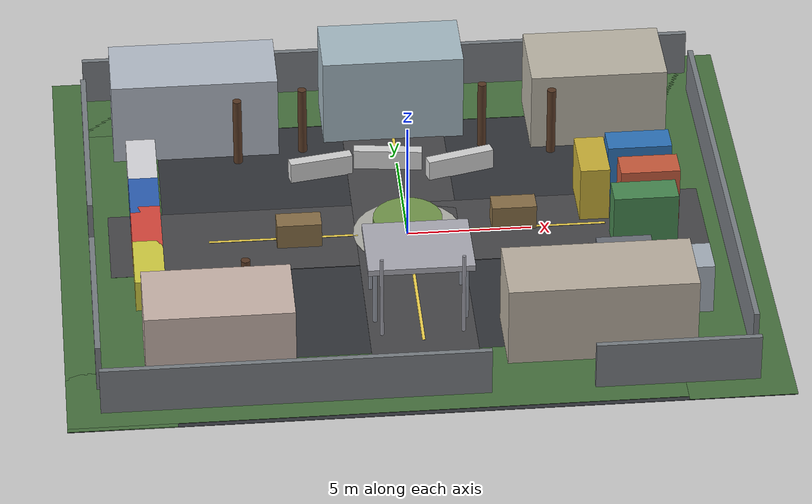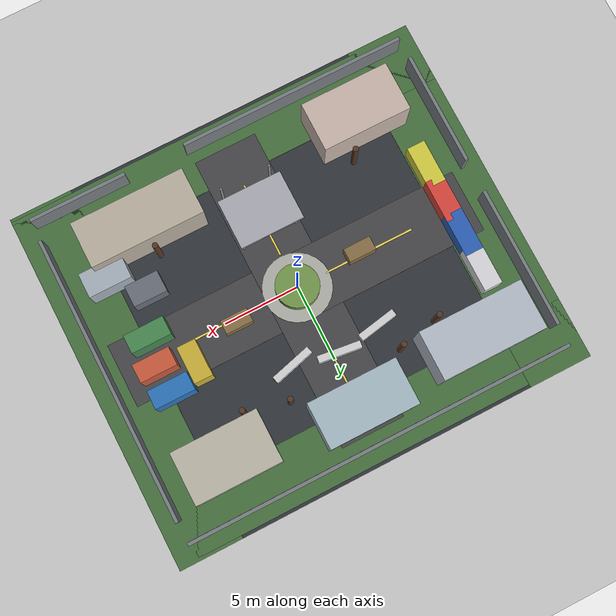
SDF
<?xml version="1.0" ?>
<sdf version="1.7">
  <world name="outdoor_research_park">
    <gravity>0 0 -9.8</gravity>
    <include>
      <uri>model://ground_plane</uri>
    </include>
    <include>
      <uri>model://sun</uri>
    </include>

    <scene>
      <ambient>0.72 0.72 0.72 1</ambient>
      <background>0.76 0.86 0.98 1</background>
      <shadows>true</shadows>
    </scene>

    <model name="site_surface">
      <static>true</static>
      <link name="surface">
        <visual name="asphalt_pad">
          <pose>0 0 0.01 0 0 0</pose>
          <geometry>
            <box><size>28 24 0.02</size></box>
          </geometry>
          <material>
            <ambient>0.18 0.19 0.21 1</ambient>
            <diffuse>0.20 0.21 0.23 1</diffuse>
          </material>
        </visual>
        <visual name="north_greenbelt">
          <pose>0 9.9 0.02 0 0 0</pose>
          <geometry>
            <box><size>28 3.8 0.04</size></box>
          </geometry>
          <material>
            <ambient>0.25 0.40 0.22 1</ambient>
            <diffuse>0.28 0.45 0.25 1</diffuse>
          </material>
        </visual>
        <visual name="south_greenbelt">
          <pose>0 -9.9 0.02 0 0 0</pose>
          <geometry>
            <box><size>28 3.8 0.04</size></box>
          </geometry>
          <material>
            <ambient>0.25 0.40 0.22 1</ambient>
            <diffuse>0.28 0.45 0.25 1</diffuse>
          </material>
        </visual>
        <visual name="west_greenbelt">
          <pose>-11.9 0 0.02 0 0 0</pose>
          <geometry>
            <box><size>4.2 24 0.04</size></box>
          </geometry>
          <material>
            <ambient>0.25 0.40 0.22 1</ambient>
            <diffuse>0.28 0.45 0.25 1</diffuse>
          </material>
        </visual>
        <visual name="east_greenbelt">
          <pose>11.9 0 0.02 0 0 0</pose>
          <geometry>
            <box><size>4.2 24 0.04</size></box>
          </geometry>
          <material>
            <ambient>0.25 0.40 0.22 1</ambient>
            <diffuse>0.28 0.45 0.25 1</diffuse>
          </material>
        </visual>
        <visual name="main_avenue">
          <pose>0 0 0.03 0 0 0</pose>
          <geometry>
            <box><size>24 4.2 0.03</size></box>
          </geometry>
          <material>
            <ambient>0.24 0.24 0.25 1</ambient>
            <diffuse>0.28 0.28 0.29 1</diffuse>
          </material>
        </visual>
        <visual name="cross_avenue">
          <pose>0 0 0.03 0 0 0</pose>
          <geometry>
            <box><size>4.2 20 0.03</size></box>
          </geometry>
          <material>
            <ambient>0.24 0.24 0.25 1</ambient>
            <diffuse>0.28 0.28 0.29 1</diffuse>
          </material>
        </visual>
        <visual name="plaza">
          <pose>0 0 0.04 0 0 0</pose>
          <geometry>
            <cylinder><radius>2.2</radius><length>0.03</length></cylinder>
          </geometry>
          <material>
            <ambient>0.63 0.63 0.60 1</ambient>
            <diffuse>0.70 0.70 0.67 1</diffuse>
          </material>
        </visual>
        <visual name="lane_marking_east">
          <pose>5.0 0 0.05 0 0 0</pose>
          <geometry>
            <box><size>6.0 0.12 0.01</size></box>
          </geometry>
          <material>
            <ambient>0.94 0.82 0.28 1</ambient>
            <diffuse>0.96 0.84 0.30 1</diffuse>
          </material>
        </visual>
        <visual name="lane_marking_west">
          <pose>-5.0 0 0.05 0 0 0</pose>
          <geometry>
            <box><size>6.0 0.12 0.01</size></box>
          </geometry>
          <material>
            <ambient>0.94 0.82 0.28 1</ambient>
            <diffuse>0.96 0.84 0.30 1</diffuse>
          </material>
        </visual>
        <visual name="lane_marking_north">
          <pose>0 4.8 0.05 0 0 1.5708</pose>
          <geometry>
            <box><size>5.0 0.12 0.01</size></box>
          </geometry>
          <material>
            <ambient>0.94 0.82 0.28 1</ambient>
            <diffuse>0.96 0.84 0.30 1</diffuse>
          </material>
        </visual>
        <visual name="lane_marking_south">
          <pose>0 -4.8 0.05 0 0 1.5708</pose>
          <geometry>
            <box><size>5.0 0.12 0.01</size></box>
          </geometry>
          <material>
            <ambient>0.94 0.82 0.28 1</ambient>
            <diffuse>0.96 0.84 0.30 1</diffuse>
          </material>
        </visual>
      </link>
    </model>

    <model name="campus_structures">
      <static>true</static>
      <link name="structures">
        <collision name="north_lab_west">
          <pose>-8.2 7.7 1.8 0 0 0</pose>
          <geometry><box><size>6.8 3.2 3.6</size></box></geometry>
        </collision>
        <collision name="north_lab_center">
          <pose>0.0 8.3 1.9 0 0 0</pose>
          <geometry><box><size>5.8 3.0 3.8</size></box></geometry>
        </collision>
        <collision name="north_lab_east">
          <pose>8.4 7.4 1.7 0 0 0</pose>
          <geometry><box><size>5.6 3.4 3.4</size></box></geometry>
        </collision>
        <collision name="south_office_west">
          <pose>-8.0 -7.8 1.6 0 0 0</pose>
          <geometry><box><size>5.8 3.2 3.2</size></box></geometry>
        </collision>
        <collision name="south_office_east">
          <pose>6.8 -7.6 1.7 0 0 0</pose>
          <geometry><box><size>7.4 3.0 3.4</size></box></geometry>
        </collision>
        <collision name="west_gate_fence_north">
          <pose>-12.7 4.8 1.0 0 0 0</pose>
          <geometry><box><size>0.22 9.2 2.0</size></box></geometry>
        </collision>
        <collision name="west_gate_fence_south">
          <pose>-12.7 -5.7 1.0 0 0 0</pose>
          <geometry><box><size>0.22 7.4 2.0</size></box></geometry>
        </collision>
        <collision name="east_fence">
          <pose>12.7 0.0 1.0 0 0 0</pose>
          <geometry><box><size>0.22 18.8 2.0</size></box></geometry>
        </collision>
        <collision name="north_fence">
          <pose>0.0 10.8 1.0 0 0 0</pose>
          <geometry><box><size>25.4 0.22 2.0</size></box></geometry>
        </collision>
        <collision name="south_fence_west">
          <pose>-5.2 -10.8 1.0 0 0 0</pose>
          <geometry><box><size>15.0 0.22 2.0</size></box></geometry>
        </collision>
        <collision name="south_fence_east">
          <pose>9.5 -10.8 1.0 0 0 0</pose>
          <geometry><box><size>6.4 0.22 2.0</size></box></geometry>
        </collision>
        <collision name="center_island">
          <pose>0.0 0.0 0.4 0 0 0</pose>
          <geometry><cylinder><radius>1.4</radius><length>0.8</length></cylinder></geometry>
        </collision>
        <collision name="inspection_canopy_roof">
          <pose>0.0 -4.8 2.7 0 0 0</pose>
          <geometry><box><size>4.2 3.2 0.25</size></box></geometry>
        </collision>
        <collision name="inspection_canopy_post_1">
          <pose>-1.8 -5.9 1.3 0 0 0</pose>
          <geometry><cylinder><radius>0.08</radius><length>2.6</length></cylinder></geometry>
        </collision>
        <collision name="inspection_canopy_post_2">
          <pose>1.8 -5.9 1.3 0 0 0</pose>
          <geometry><cylinder><radius>0.08</radius><length>2.6</length></cylinder></geometry>
        </collision>
        <collision name="inspection_canopy_post_3">
          <pose>-1.8 -3.7 1.3 0 0 0</pose>
          <geometry><cylinder><radius>0.08</radius><length>2.6</length></cylinder></geometry>
        </collision>
        <collision name="inspection_canopy_post_4">
          <pose>1.8 -3.7 1.3 0 0 0</pose>
          <geometry><cylinder><radius>0.08</radius><length>2.6</length></cylinder></geometry>
        </collision>
        <collision name="container_a">
          <pose>9.6 2.4 1.2 0 0 0</pose>
          <geometry><box><size>2.6 1.2 2.4</size></box></geometry>
        </collision>
        <collision name="container_b">
          <pose>9.8 0.6 1.2 0 0 0</pose>
          <geometry><box><size>2.4 1.2 2.4</size></box></geometry>
        </collision>
        <collision name="container_c">
          <pose>9.4 -1.2 1.2 0 0 0</pose>
          <geometry><box><size>2.6 1.2 2.4</size></box></geometry>
        </collision>
        <collision name="container_d">
          <pose>7.6 1.5 1.2 0 0 1.5708</pose>
          <geometry><box><size>2.4 1.2 2.4</size></box></geometry>
        </collision>
        <collision name="generator_skid">
          <pose>8.3 -3.9 0.8 0 0 0</pose>
          <geometry><box><size>2.2 1.4 1.6</size></box></geometry>
        </collision>
        <collision name="utility_shed">
          <pose>10.1 -5.6 1.1 0 0 0</pose>
          <geometry><box><size>2.8 1.6 2.2</size></box></geometry>
        </collision>
        <collision name="car_a">
          <pose>-10.5 4.2 0.7 0 0 1.5708</pose>
          <geometry><box><size>2.8 1.2 1.4</size></box></geometry>
        </collision>
        <collision name="car_b">
          <pose>-10.5 1.8 0.7 0 0 1.5708</pose>
          <geometry><box><size>2.8 1.2 1.4</size></box></geometry>
        </collision>
        <collision name="car_c">
          <pose>-10.5 -0.6 0.7 0 0 1.5708</pose>
          <geometry><box><size>2.8 1.2 1.4</size></box></geometry>
        </collision>
        <collision name="car_d">
          <pose>-10.5 -3.0 0.7 0 0 1.5708</pose>
          <geometry><box><size>2.8 1.2 1.4</size></box></geometry>
        </collision>
        <collision name="jersey_barrier_a">
          <pose>-3.2 4.4 0.45 0 0 0.18</pose>
          <geometry><box><size>2.6 0.45 0.9</size></box></geometry>
        </collision>
        <collision name="jersey_barrier_b">
          <pose>-0.4 4.8 0.45 0 0 -0.12</pose>
          <geometry><box><size>2.8 0.45 0.9</size></box></geometry>
        </collision>
        <collision name="jersey_barrier_c">
          <pose>2.5 4.2 0.45 0 0 0.26</pose>
          <geometry><box><size>2.8 0.45 0.9</size></box></geometry>
        </collision>
        <collision name="planter_a">
          <pose>-4.4 -0.2 0.55 0 0 0</pose>
          <geometry><box><size>1.8 0.9 1.1</size></box></geometry>
        </collision>
        <collision name="planter_b">
          <pose>4.3 0.3 0.55 0 0 0</pose>
          <geometry><box><size>1.8 0.9 1.1</size></box></geometry>
        </collision>
        <collision name="tree_1">
          <pose>-6.5 5.7 1.5 0 0 0</pose>
          <geometry><cylinder><radius>0.18</radius><length>3.0</length></cylinder></geometry>
        </collision>
        <collision name="tree_2">
          <pose>-3.8 6.3 1.5 0 0 0</pose>
          <geometry><cylinder><radius>0.18</radius><length>3.0</length></cylinder></geometry>
        </collision>
        <collision name="tree_3">
          <pose>3.6 6.1 1.5 0 0 0</pose>
          <geometry><cylinder><radius>0.18</radius><length>3.0</length></cylinder></geometry>
        </collision>
        <collision name="tree_4">
          <pose>6.4 5.4 1.5 0 0 0</pose>
          <geometry><cylinder><radius>0.18</radius><length>3.0</length></cylinder></geometry>
        </collision>
        <collision name="tree_5">
          <pose>-6.8 -5.5 1.5 0 0 0</pose>
          <geometry><cylinder><radius>0.18</radius><length>3.0</length></cylinder></geometry>
        </collision>
        <collision name="tree_6">
          <pose>6.6 -5.7 1.5 0 0 0</pose>
          <geometry><cylinder><radius>0.18</radius><length>3.0</length></cylinder></geometry>
        </collision>
        <collision name="lamp_post_a">
          <pose>-1.5 7.0 1.8 0 0 0</pose>
          <geometry><cylinder><radius>0.07</radius><length>3.6</length></cylinder></geometry>
        </collision>
        <collision name="lamp_post_b">
          <pose>1.5 7.0 1.8 0 0 0</pose>
          <geometry><cylinder><radius>0.07</radius><length>3.6</length></cylinder></geometry>
        </collision>
        <collision name="lamp_post_c">
          <pose>-1.6 -6.8 1.8 0 0 0</pose>
          <geometry><cylinder><radius>0.07</radius><length>3.6</length></cylinder></geometry>
        </collision>
        <collision name="lamp_post_d">
          <pose>1.6 -6.8 1.8 0 0 0</pose>
          <geometry><cylinder><radius>0.07</radius><length>3.6</length></cylinder></geometry>
        </collision>

        <visual name="north_lab_west_visual">
          <pose>-8.2 7.7 1.8 0 0 0</pose>
          <geometry><box><size>6.8 3.2 3.6</size></box></geometry>
          <material><ambient>0.66 0.69 0.74 1</ambient><diffuse>0.72 0.75 0.80 1</diffuse></material>
        </visual>
        <visual name="north_lab_center_visual">
          <pose>0.0 8.3 1.9 0 0 0</pose>
          <geometry><box><size>5.8 3.0 3.8</size></box></geometry>
          <material><ambient>0.60 0.68 0.72 1</ambient><diffuse>0.66 0.74 0.78 1</diffuse></material>
        </visual>
        <visual name="north_lab_east_visual">
          <pose>8.4 7.4 1.7 0 0 0</pose>
          <geometry><box><size>5.6 3.4 3.4</size></box></geometry>
          <material><ambient>0.68 0.66 0.60 1</ambient><diffuse>0.74 0.72 0.66 1</diffuse></material>
        </visual>
        <visual name="south_office_west_visual">
          <pose>-8.0 -7.8 1.6 0 0 0</pose>
          <geometry><box><size>5.8 3.2 3.2</size></box></geometry>
          <material><ambient>0.73 0.66 0.62 1</ambient><diffuse>0.80 0.72 0.68 1</diffuse></material>
        </visual>
        <visual name="south_office_east_visual">
          <pose>6.8 -7.6 1.7 0 0 0</pose>
          <geometry><box><size>7.4 3.0 3.4</size></box></geometry>
          <material><ambient>0.67 0.64 0.58 1</ambient><diffuse>0.74 0.70 0.64 1</diffuse></material>
        </visual>
        <visual name="west_gate_fence_north_visual">
          <pose>-12.7 4.8 1.0 0 0 0</pose>
          <geometry><box><size>0.22 9.2 2.0</size></box></geometry>
          <material><ambient>0.48 0.50 0.52 1</ambient></material>
        </visual>
        <visual name="west_gate_fence_south_visual">
          <pose>-12.7 -5.7 1.0 0 0 0</pose>
          <geometry><box><size>0.22 7.4 2.0</size></box></geometry>
          <material><ambient>0.48 0.50 0.52 1</ambient></material>
        </visual>
        <visual name="east_fence_visual">
          <pose>12.7 0.0 1.0 0 0 0</pose>
          <geometry><box><size>0.22 18.8 2.0</size></box></geometry>
          <material><ambient>0.48 0.50 0.52 1</ambient></material>
        </visual>
        <visual name="north_fence_visual">
          <pose>0.0 10.8 1.0 0 0 0</pose>
          <geometry><box><size>25.4 0.22 2.0</size></box></geometry>
          <material><ambient>0.48 0.50 0.52 1</ambient></material>
        </visual>
        <visual name="south_fence_west_visual">
          <pose>-5.2 -10.8 1.0 0 0 0</pose>
          <geometry><box><size>15.0 0.22 2.0</size></box></geometry>
          <material><ambient>0.48 0.50 0.52 1</ambient></material>
        </visual>
        <visual name="south_fence_east_visual">
          <pose>9.5 -10.8 1.0 0 0 0</pose>
          <geometry><box><size>6.4 0.22 2.0</size></box></geometry>
          <material><ambient>0.48 0.50 0.52 1</ambient></material>
        </visual>
        <visual name="center_island_visual">
          <pose>0.0 0.0 0.4 0 0 0</pose>
          <geometry><cylinder><radius>1.4</radius><length>0.8</length></cylinder></geometry>
          <material><ambient>0.42 0.54 0.26 1</ambient><diffuse>0.46 0.60 0.30 1</diffuse></material>
        </visual>
        <visual name="inspection_canopy_roof_visual">
          <pose>0.0 -4.8 2.7 0 0 0</pose>
          <geometry><box><size>4.2 3.2 0.25</size></box></geometry>
          <material><ambient>0.68 0.68 0.72 1</ambient></material>
        </visual>
        <visual name="inspection_canopy_post_1_visual">
          <pose>-1.8 -5.9 1.3 0 0 0</pose>
          <geometry><cylinder><radius>0.08</radius><length>2.6</length></cylinder></geometry>
          <material><ambient>0.56 0.58 0.62 1</ambient></material>
        </visual>
        <visual name="inspection_canopy_post_2_visual">
          <pose>1.8 -5.9 1.3 0 0 0</pose>
          <geometry><cylinder><radius>0.08</radius><length>2.6</length></cylinder></geometry>
          <material><ambient>0.56 0.58 0.62 1</ambient></material>
        </visual>
        <visual name="inspection_canopy_post_3_visual">
          <pose>-1.8 -3.7 1.3 0 0 0</pose>
          <geometry><cylinder><radius>0.08</radius><length>2.6</length></cylinder></geometry>
          <material><ambient>0.56 0.58 0.62 1</ambient></material>
        </visual>
        <visual name="inspection_canopy_post_4_visual">
          <pose>1.8 -3.7 1.3 0 0 0</pose>
          <geometry><cylinder><radius>0.08</radius><length>2.6</length></cylinder></geometry>
          <material><ambient>0.56 0.58 0.62 1</ambient></material>
        </visual>
        <visual name="container_a_visual">
          <pose>9.6 2.4 1.2 0 0 0</pose>
          <geometry><box><size>2.6 1.2 2.4</size></box></geometry>
          <material><ambient>0.16 0.42 0.68 1</ambient><diffuse>0.18 0.46 0.74 1</diffuse></material>
        </visual>
        <visual name="container_b_visual">
          <pose>9.8 0.6 1.2 0 0 0</pose>
          <geometry><box><size>2.4 1.2 2.4</size></box></geometry>
          <material><ambient>0.72 0.32 0.20 1</ambient><diffuse>0.80 0.36 0.24 1</diffuse></material>
        </visual>
        <visual name="container_c_visual">
          <pose>9.4 -1.2 1.2 0 0 0</pose>
          <geometry><box><size>2.6 1.2 2.4</size></box></geometry>
          <material><ambient>0.24 0.48 0.28 1</ambient><diffuse>0.28 0.54 0.32 1</diffuse></material>
        </visual>
        <visual name="container_d_visual">
          <pose>7.6 1.5 1.2 0 0 1.5708</pose>
          <geometry><box><size>2.4 1.2 2.4</size></box></geometry>
          <material><ambient>0.72 0.62 0.18 1</ambient><diffuse>0.80 0.70 0.22 1</diffuse></material>
        </visual>
        <visual name="generator_skid_visual">
          <pose>8.3 -3.9 0.8 0 0 0</pose>
          <geometry><box><size>2.2 1.4 1.6</size></box></geometry>
          <material><ambient>0.42 0.44 0.48 1</ambient></material>
        </visual>
        <visual name="utility_shed_visual">
          <pose>10.1 -5.6 1.1 0 0 0</pose>
          <geometry><box><size>2.8 1.6 2.2</size></box></geometry>
          <material><ambient>0.66 0.70 0.74 1</ambient></material>
        </visual>
        <visual name="car_a_visual">
          <pose>-10.5 4.2 0.7 0 0 1.5708</pose>
          <geometry><box><size>2.8 1.2 1.4</size></box></geometry>
          <material><ambient>0.86 0.86 0.88 1</ambient></material>
        </visual>
        <visual name="car_b_visual">
          <pose>-10.5 1.8 0.7 0 0 1.5708</pose>
          <geometry><box><size>2.8 1.2 1.4</size></box></geometry>
          <material><ambient>0.18 0.38 0.72 1</ambient></material>
        </visual>
        <visual name="car_c_visual">
          <pose>-10.5 -0.6 0.7 0 0 1.5708</pose>
          <geometry><box><size>2.8 1.2 1.4</size></box></geometry>
          <material><ambient>0.86 0.28 0.24 1</ambient></material>
        </visual>
        <visual name="car_d_visual">
          <pose>-10.5 -3.0 0.7 0 0 1.5708</pose>
          <geometry><box><size>2.8 1.2 1.4</size></box></geometry>
          <material><ambient>0.84 0.82 0.26 1</ambient></material>
        </visual>
        <visual name="jersey_barrier_a_visual">
          <pose>-3.2 4.4 0.45 0 0 0.18</pose>
          <geometry><box><size>2.6 0.45 0.9</size></box></geometry>
          <material><ambient>0.84 0.84 0.84 1</ambient></material>
        </visual>
        <visual name="jersey_barrier_b_visual">
          <pose>-0.4 4.8 0.45 0 0 -0.12</pose>
          <geometry><box><size>2.8 0.45 0.9</size></box></geometry>
          <material><ambient>0.84 0.84 0.84 1</ambient></material>
        </visual>
        <visual name="jersey_barrier_c_visual">
          <pose>2.5 4.2 0.45 0 0 0.26</pose>
          <geometry><box><size>2.8 0.45 0.9</size></box></geometry>
          <material><ambient>0.84 0.84 0.84 1</ambient></material>
        </visual>
        <visual name="planter_a_visual">
          <pose>-4.4 -0.2 0.55 0 0 0</pose>
          <geometry><box><size>1.8 0.9 1.1</size></box></geometry>
          <material><ambient>0.54 0.44 0.28 1</ambient></material>
        </visual>
        <visual name="planter_b_visual">
          <pose>4.3 0.3 0.55 0 0 0</pose>
          <geometry><box><size>1.8 0.9 1.1</size></box></geometry>
          <material><ambient>0.54 0.44 0.28 1</ambient></material>
        </visual>
        <visual name="tree_1_visual">
          <pose>-6.5 5.7 1.5 0 0 0</pose>
          <geometry><cylinder><radius>0.18</radius><length>3.0</length></cylinder></geometry>
          <material><ambient>0.34 0.22 0.14 1</ambient></material>
        </visual>
        <visual name="tree_2_visual">
          <pose>-3.8 6.3 1.5 0 0 0</pose>
          <geometry><cylinder><radius>0.18</radius><length>3.0</length></cylinder></geometry>
          <material><ambient>0.34 0.22 0.14 1</ambient></material>
        </visual>
        <visual name="tree_3_visual">
          <pose>3.6 6.1 1.5 0 0 0</pose>
          <geometry><cylinder><radius>0.18</radius><length>3.0</length></cylinder></geometry>
          <material><ambient>0.34 0.22 0.14 1</ambient></material>
        </visual>
        <visual name="tree_4_visual">
          <pose>6.4 5.4 1.5 0 0 0</pose>
          <geometry><cylinder><radius>0.18</radius><length>3.0</length></cylinder></geometry>
          <material><ambient>0.34 0.22 0.14 1</ambient></material>
        </visual>
        <visual name="tree_5_visual">
          <pose>-6.8 -5.5 1.5 0 0 0</pose>
          <geometry><cylinder><radius>0.18</radius><length>3.0</length></cylinder></geometry>
          <material><ambient>0.34 0.22 0.14 1</ambient></material>
        </visual>
        <visual name="tree_6_visual">
          <pose>6.6 -5.7 1.5 0 0 0</pose>
          <geometry><cylinder><radius>0.18</radius><length>3.0</length></cylinder></geometry>
          <material><ambient>0.34 0.22 0.14 1</ambient></material>
        </visual>
        <visual name="lamp_post_a_visual">
          <pose>-1.5 7.0 1.8 0 0 0</pose>
          <geometry><cylinder><radius>0.07</radius><length>3.6</length></cylinder></geometry>
          <material><ambient>0.60 0.60 0.64 1</ambient></material>
        </visual>
        <visual name="lamp_post_b_visual">
          <pose>1.5 7.0 1.8 0 0 0</pose>
          <geometry><cylinder><radius>0.07</radius><length>3.6</length></cylinder></geometry>
          <material><ambient>0.60 0.60 0.64 1</ambient></material>
        </visual>
        <visual name="lamp_post_c_visual">
          <pose>-1.6 -6.8 1.8 0 0 0</pose>
          <geometry><cylinder><radius>0.07</radius><length>3.6</length></cylinder></geometry>
          <material><ambient>0.60 0.60 0.64 1</ambient></material>
        </visual>
        <visual name="lamp_post_d_visual">
          <pose>1.6 -6.8 1.8 0 0 0</pose>
          <geometry><cylinder><radius>0.07</radius><length>3.6</length></cylinder></geometry>
          <material><ambient>0.60 0.60 0.64 1</ambient></material>
        </visual>
      </link>
    </model>
  </world>
</sdf>
